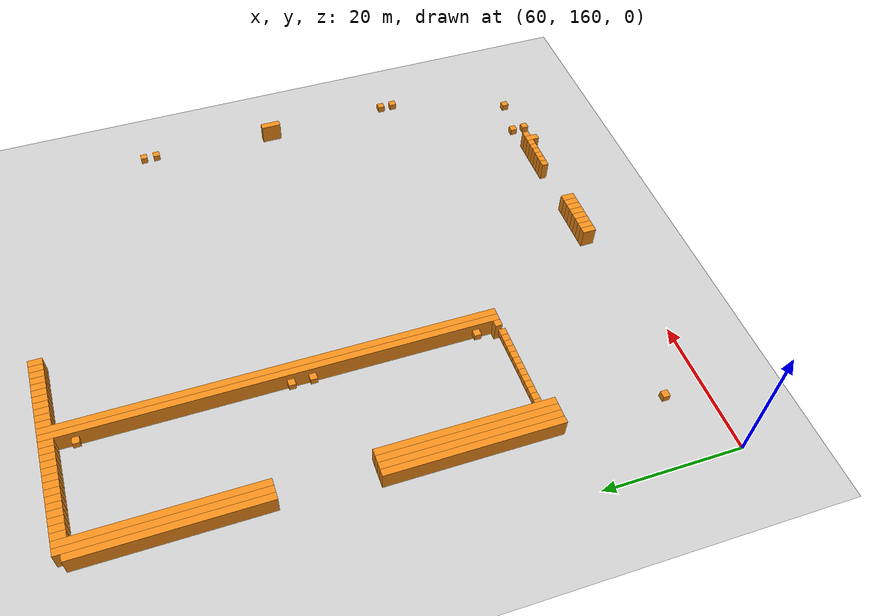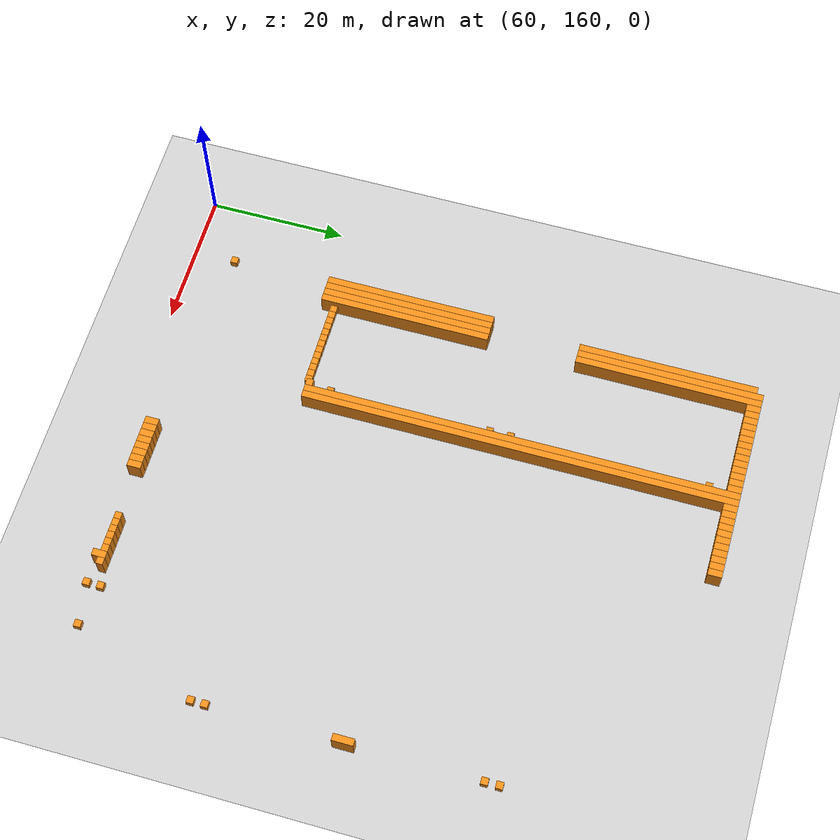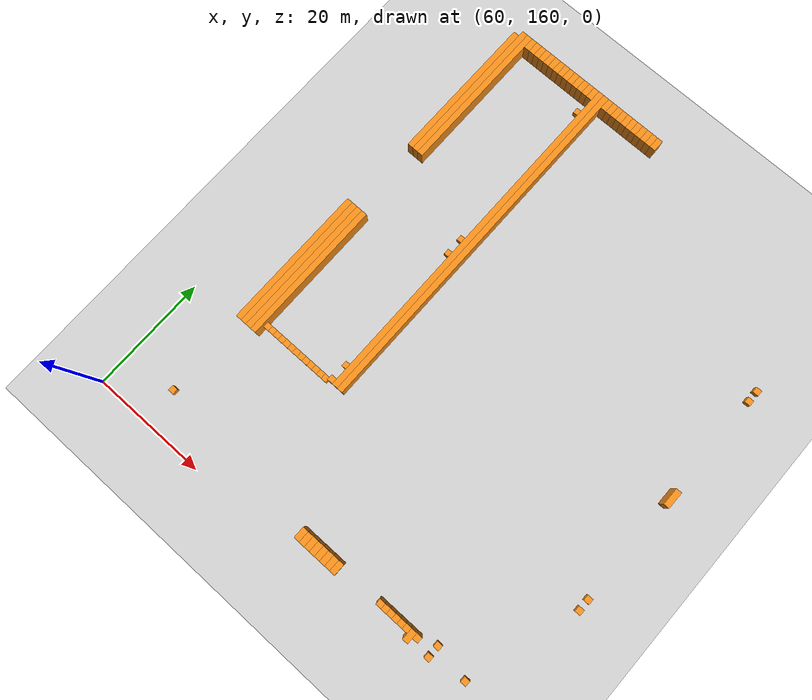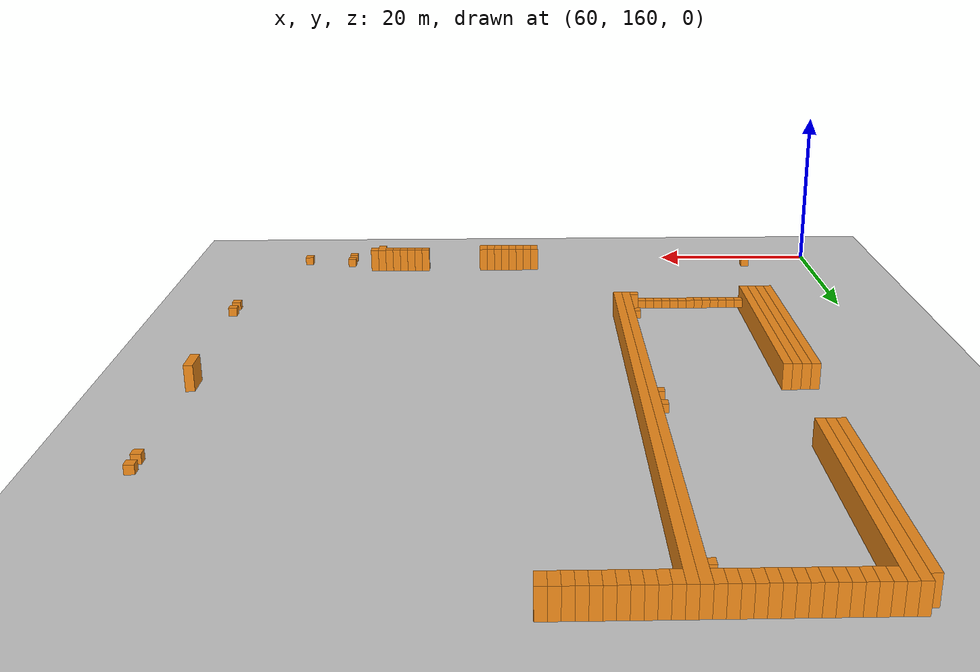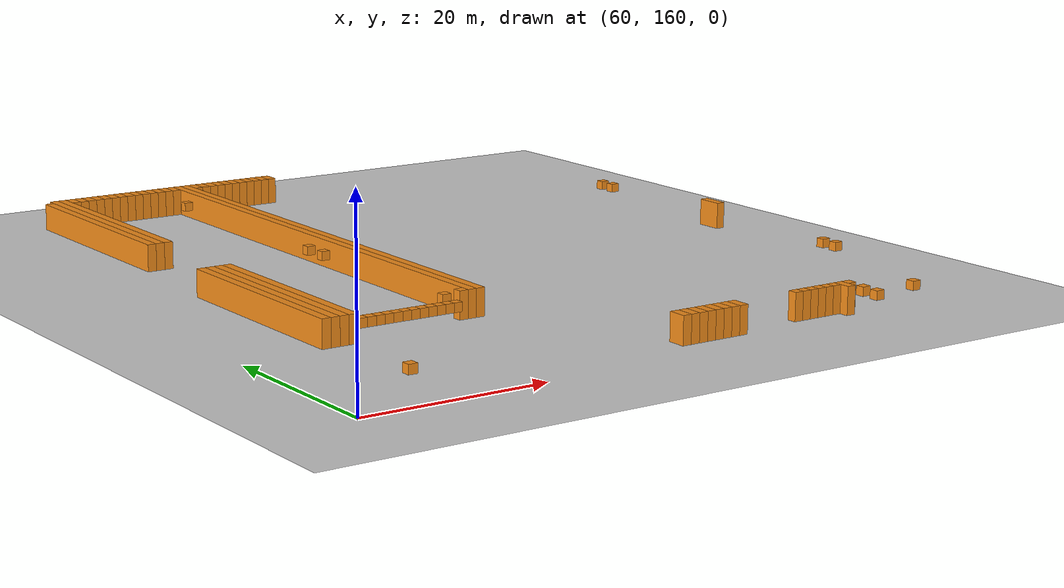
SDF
<sdf version="1.6">
 <world name="default">
  <include><uri>model://ground_plane</uri></include>
  <model name="unit_box_748">
   <pose>69.50   166.50     1.50 0 0 0</pose>
   <static>1</static>
   <link name="link">
    <inertial>
     <mass>5000</mass>
     <inertia><ixx>200</ixx><ixy>0</ixy><ixz>0</ixz><iyy>200</iyy><iyz>0</iyz><izz>200</izz></inertia>
    </inertial>
    <collision name="collision"><geometry><box><size>1 1 1</size></box></geometry></collision>
    <visual name="visual">
     <geometry><box><size>1 1 1</size></box></geometry>
     <material>
      <script><name>Gazebo/Orange</name><uri>file://media/materials/scripts/gazebo.material</uri></script>
     </material>
    </visual>
   </link>
  </model>
  <model name="unit_box_749">
   <pose>69.50   193.50     1.50 0 0 0</pose>
   <static>1</static>
   <link name="link">
    <inertial>
     <mass>5000</mass>
     <inertia><ixx>200</ixx><ixy>0</ixy><ixz>0</ixz><iyy>200</iyy><iyz>0</iyz><izz>200</izz></inertia>
    </inertial>
    <collision name="collision"><geometry><box><size>1 25 3</size></box></geometry></collision>
    <visual name="visual">
     <geometry><box><size>1 25 3</size></box></geometry>
     <material>
      <script><name>Gazebo/Orange</name><uri>file://media/materials/scripts/gazebo.material</uri></script>
     </material>
    </visual>
   </link>
  </model>
  <model name="unit_box_760">
   <pose>70.50   193.50     1.50 0 0 0</pose>
   <static>1</static>
   <link name="link">
    <inertial>
     <mass>5000</mass>
     <inertia><ixx>200</ixx><ixy>0</ixy><ixz>0</ixz><iyy>200</iyy><iyz>0</iyz><izz>200</izz></inertia>
    </inertial>
    <collision name="collision"><geometry><box><size>1 25 3</size></box></geometry></collision>
    <visual name="visual">
     <geometry><box><size>1 25 3</size></box></geometry>
     <material>
      <script><name>Gazebo/Orange</name><uri>file://media/materials/scripts/gazebo.material</uri></script>
     </material>
    </visual>
   </link>
  </model>
  <model name="unit_box_761">
   <pose>70.50   232.00     1.50 0 0 0</pose>
   <static>1</static>
   <link name="link">
    <inertial>
     <mass>5000</mass>
     <inertia><ixx>200</ixx><ixy>0</ixy><ixz>0</ixz><iyy>200</iyy><iyz>0</iyz><izz>200</izz></inertia>
    </inertial>
    <collision name="collision"><geometry><box><size>1 26 3</size></box></geometry></collision>
    <visual name="visual">
     <geometry><box><size>1 26 3</size></box></geometry>
     <material>
      <script><name>Gazebo/Orange</name><uri>file://media/materials/scripts/gazebo.material</uri></script>
     </material>
    </visual>
   </link>
  </model>
  <model name="unit_box_773">
   <pose>71.50   193.50     1.50 0 0 0</pose>
   <static>1</static>
   <link name="link">
    <inertial>
     <mass>5000</mass>
     <inertia><ixx>200</ixx><ixy>0</ixy><ixz>0</ixz><iyy>200</iyy><iyz>0</iyz><izz>200</izz></inertia>
    </inertial>
    <collision name="collision"><geometry><box><size>1 25 3</size></box></geometry></collision>
    <visual name="visual">
     <geometry><box><size>1 25 3</size></box></geometry>
     <material>
      <script><name>Gazebo/Orange</name><uri>file://media/materials/scripts/gazebo.material</uri></script>
     </material>
    </visual>
   </link>
  </model>
  <model name="unit_box_774">
   <pose>71.50   232.50     1.50 0 0 0</pose>
   <static>1</static>
   <link name="link">
    <inertial>
     <mass>5000</mass>
     <inertia><ixx>200</ixx><ixy>0</ixy><ixz>0</ixz><iyy>200</iyy><iyz>0</iyz><izz>200</izz></inertia>
    </inertial>
    <collision name="collision"><geometry><box><size>1 27 3</size></box></geometry></collision>
    <visual name="visual">
     <geometry><box><size>1 27 3</size></box></geometry>
     <material>
      <script><name>Gazebo/Orange</name><uri>file://media/materials/scripts/gazebo.material</uri></script>
     </material>
    </visual>
   </link>
  </model>
  <model name="unit_box_787">
   <pose>72.50   193.50     1.50 0 0 0</pose>
   <static>1</static>
   <link name="link">
    <inertial>
     <mass>5000</mass>
     <inertia><ixx>200</ixx><ixy>0</ixy><ixz>0</ixz><iyy>200</iyy><iyz>0</iyz><izz>200</izz></inertia>
    </inertial>
    <collision name="collision"><geometry><box><size>1 25 3</size></box></geometry></collision>
    <visual name="visual">
     <geometry><box><size>1 25 3</size></box></geometry>
     <material>
      <script><name>Gazebo/Orange</name><uri>file://media/materials/scripts/gazebo.material</uri></script>
     </material>
    </visual>
   </link>
  </model>
  <model name="unit_box_788">
   <pose>72.50   232.50     1.50 0 0 0</pose>
   <static>1</static>
   <link name="link">
    <inertial>
     <mass>5000</mass>
     <inertia><ixx>200</ixx><ixy>0</ixy><ixz>0</ixz><iyy>200</iyy><iyz>0</iyz><izz>200</izz></inertia>
    </inertial>
    <collision name="collision"><geometry><box><size>1 27 3</size></box></geometry></collision>
    <visual name="visual">
     <geometry><box><size>1 27 3</size></box></geometry>
     <material>
      <script><name>Gazebo/Orange</name><uri>file://media/materials/scripts/gazebo.material</uri></script>
     </material>
    </visual>
   </link>
  </model>
  <model name="unit_box_802">
   <pose>73.50   183.00     1.50 0 0 0</pose>
   <static>1</static>
   <link name="link">
    <inertial>
     <mass>5000</mass>
     <inertia><ixx>200</ixx><ixy>0</ixy><ixz>0</ixz><iyy>200</iyy><iyz>0</iyz><izz>200</izz></inertia>
    </inertial>
    <collision name="collision"><geometry><box><size>1 1 1</size></box></geometry></collision>
    <visual name="visual">
     <geometry><box><size>1 1 1</size></box></geometry>
     <material>
      <script><name>Gazebo/Orange</name><uri>file://media/materials/scripts/gazebo.material</uri></script>
     </material>
    </visual>
   </link>
  </model>
  <model name="unit_box_803">
   <pose>73.50   245.00     1.50 0 0 0</pose>
   <static>1</static>
   <link name="link">
    <inertial>
     <mass>5000</mass>
     <inertia><ixx>200</ixx><ixy>0</ixy><ixz>0</ixz><iyy>200</iyy><iyz>0</iyz><izz>200</izz></inertia>
    </inertial>
    <collision name="collision"><geometry><box><size>1 2 3</size></box></geometry></collision>
    <visual name="visual">
     <geometry><box><size>1 2 3</size></box></geometry>
     <material>
      <script><name>Gazebo/Orange</name><uri>file://media/materials/scripts/gazebo.material</uri></script>
     </material>
    </visual>
   </link>
  </model>
  <model name="unit_box_818">
   <pose>74.50   183.00     1.50 0 0 0</pose>
   <static>1</static>
   <link name="link">
    <inertial>
     <mass>5000</mass>
     <inertia><ixx>200</ixx><ixy>0</ixy><ixz>0</ixz><iyy>200</iyy><iyz>0</iyz><izz>200</izz></inertia>
    </inertial>
    <collision name="collision"><geometry><box><size>1 1 1</size></box></geometry></collision>
    <visual name="visual">
     <geometry><box><size>1 1 1</size></box></geometry>
     <material>
      <script><name>Gazebo/Orange</name><uri>file://media/materials/scripts/gazebo.material</uri></script>
     </material>
    </visual>
   </link>
  </model>
  <model name="unit_box_819">
   <pose>74.50   245.00     1.50 0 0 0</pose>
   <static>1</static>
   <link name="link">
    <inertial>
     <mass>5000</mass>
     <inertia><ixx>200</ixx><ixy>0</ixy><ixz>0</ixz><iyy>200</iyy><iyz>0</iyz><izz>200</izz></inertia>
    </inertial>
    <collision name="collision"><geometry><box><size>1 2 3</size></box></geometry></collision>
    <visual name="visual">
     <geometry><box><size>1 2 3</size></box></geometry>
     <material>
      <script><name>Gazebo/Orange</name><uri>file://media/materials/scripts/gazebo.material</uri></script>
     </material>
    </visual>
   </link>
  </model>
  <model name="unit_box_833">
   <pose>75.50   183.00     1.50 0 0 0</pose>
   <static>1</static>
   <link name="link">
    <inertial>
     <mass>5000</mass>
     <inertia><ixx>200</ixx><ixy>0</ixy><ixz>0</ixz><iyy>200</iyy><iyz>0</iyz><izz>200</izz></inertia>
    </inertial>
    <collision name="collision"><geometry><box><size>1 1 1</size></box></geometry></collision>
    <visual name="visual">
     <geometry><box><size>1 1 1</size></box></geometry>
     <material>
      <script><name>Gazebo/Orange</name><uri>file://media/materials/scripts/gazebo.material</uri></script>
     </material>
    </visual>
   </link>
  </model>
  <model name="unit_box_834">
   <pose>75.50   245.00     1.50 0 0 0</pose>
   <static>1</static>
   <link name="link">
    <inertial>
     <mass>5000</mass>
     <inertia><ixx>200</ixx><ixy>0</ixy><ixz>0</ixz><iyy>200</iyy><iyz>0</iyz><izz>200</izz></inertia>
    </inertial>
    <collision name="collision"><geometry><box><size>1 2 3</size></box></geometry></collision>
    <visual name="visual">
     <geometry><box><size>1 2 3</size></box></geometry>
     <material>
      <script><name>Gazebo/Orange</name><uri>file://media/materials/scripts/gazebo.material</uri></script>
     </material>
    </visual>
   </link>
  </model>
  <model name="unit_box_848">
   <pose>76.50   183.00     1.50 0 0 0</pose>
   <static>1</static>
   <link name="link">
    <inertial>
     <mass>5000</mass>
     <inertia><ixx>200</ixx><ixy>0</ixy><ixz>0</ixz><iyy>200</iyy><iyz>0</iyz><izz>200</izz></inertia>
    </inertial>
    <collision name="collision"><geometry><box><size>1 1 1</size></box></geometry></collision>
    <visual name="visual">
     <geometry><box><size>1 1 1</size></box></geometry>
     <material>
      <script><name>Gazebo/Orange</name><uri>file://media/materials/scripts/gazebo.material</uri></script>
     </material>
    </visual>
   </link>
  </model>
  <model name="unit_box_849">
   <pose>76.50   245.00     1.50 0 0 0</pose>
   <static>1</static>
   <link name="link">
    <inertial>
     <mass>5000</mass>
     <inertia><ixx>200</ixx><ixy>0</ixy><ixz>0</ixz><iyy>200</iyy><iyz>0</iyz><izz>200</izz></inertia>
    </inertial>
    <collision name="collision"><geometry><box><size>1 2 3</size></box></geometry></collision>
    <visual name="visual">
     <geometry><box><size>1 2 3</size></box></geometry>
     <material>
      <script><name>Gazebo/Orange</name><uri>file://media/materials/scripts/gazebo.material</uri></script>
     </material>
    </visual>
   </link>
  </model>
  <model name="unit_box_863">
   <pose>77.50   183.00     1.50 0 0 0</pose>
   <static>1</static>
   <link name="link">
    <inertial>
     <mass>5000</mass>
     <inertia><ixx>200</ixx><ixy>0</ixy><ixz>0</ixz><iyy>200</iyy><iyz>0</iyz><izz>200</izz></inertia>
    </inertial>
    <collision name="collision"><geometry><box><size>1 1 1</size></box></geometry></collision>
    <visual name="visual">
     <geometry><box><size>1 1 1</size></box></geometry>
     <material>
      <script><name>Gazebo/Orange</name><uri>file://media/materials/scripts/gazebo.material</uri></script>
     </material>
    </visual>
   </link>
  </model>
  <model name="unit_box_864">
   <pose>77.50   245.00     1.50 0 0 0</pose>
   <static>1</static>
   <link name="link">
    <inertial>
     <mass>5000</mass>
     <inertia><ixx>200</ixx><ixy>0</ixy><ixz>0</ixz><iyy>200</iyy><iyz>0</iyz><izz>200</izz></inertia>
    </inertial>
    <collision name="collision"><geometry><box><size>1 2 3</size></box></geometry></collision>
    <visual name="visual">
     <geometry><box><size>1 2 3</size></box></geometry>
     <material>
      <script><name>Gazebo/Orange</name><uri>file://media/materials/scripts/gazebo.material</uri></script>
     </material>
    </visual>
   </link>
  </model>
  <model name="unit_box_876">
   <pose>78.50   183.00     1.50 0 0 0</pose>
   <static>1</static>
   <link name="link">
    <inertial>
     <mass>5000</mass>
     <inertia><ixx>200</ixx><ixy>0</ixy><ixz>0</ixz><iyy>200</iyy><iyz>0</iyz><izz>200</izz></inertia>
    </inertial>
    <collision name="collision"><geometry><box><size>1 1 1</size></box></geometry></collision>
    <visual name="visual">
     <geometry><box><size>1 1 1</size></box></geometry>
     <material>
      <script><name>Gazebo/Orange</name><uri>file://media/materials/scripts/gazebo.material</uri></script>
     </material>
    </visual>
   </link>
  </model>
  <model name="unit_box_877">
   <pose>78.50   245.00     1.50 0 0 0</pose>
   <static>1</static>
   <link name="link">
    <inertial>
     <mass>5000</mass>
     <inertia><ixx>200</ixx><ixy>0</ixy><ixz>0</ixz><iyy>200</iyy><iyz>0</iyz><izz>200</izz></inertia>
    </inertial>
    <collision name="collision"><geometry><box><size>1 2 3</size></box></geometry></collision>
    <visual name="visual">
     <geometry><box><size>1 2 3</size></box></geometry>
     <material>
      <script><name>Gazebo/Orange</name><uri>file://media/materials/scripts/gazebo.material</uri></script>
     </material>
    </visual>
   </link>
  </model>
  <model name="unit_box_889">
   <pose>79.50   183.00     1.50 0 0 0</pose>
   <static>1</static>
   <link name="link">
    <inertial>
     <mass>5000</mass>
     <inertia><ixx>200</ixx><ixy>0</ixy><ixz>0</ixz><iyy>200</iyy><iyz>0</iyz><izz>200</izz></inertia>
    </inertial>
    <collision name="collision"><geometry><box><size>1 1 1</size></box></geometry></collision>
    <visual name="visual">
     <geometry><box><size>1 1 1</size></box></geometry>
     <material>
      <script><name>Gazebo/Orange</name><uri>file://media/materials/scripts/gazebo.material</uri></script>
     </material>
    </visual>
   </link>
  </model>
  <model name="unit_box_890">
   <pose>79.50   245.00     1.50 0 0 0</pose>
   <static>1</static>
   <link name="link">
    <inertial>
     <mass>5000</mass>
     <inertia><ixx>200</ixx><ixy>0</ixy><ixz>0</ixz><iyy>200</iyy><iyz>0</iyz><izz>200</izz></inertia>
    </inertial>
    <collision name="collision"><geometry><box><size>1 2 3</size></box></geometry></collision>
    <visual name="visual">
     <geometry><box><size>1 2 3</size></box></geometry>
     <material>
      <script><name>Gazebo/Orange</name><uri>file://media/materials/scripts/gazebo.material</uri></script>
     </material>
    </visual>
   </link>
  </model>
  <model name="unit_box_902">
   <pose>80.50   183.00     1.50 0 0 0</pose>
   <static>1</static>
   <link name="link">
    <inertial>
     <mass>5000</mass>
     <inertia><ixx>200</ixx><ixy>0</ixy><ixz>0</ixz><iyy>200</iyy><iyz>0</iyz><izz>200</izz></inertia>
    </inertial>
    <collision name="collision"><geometry><box><size>1 1 1</size></box></geometry></collision>
    <visual name="visual">
     <geometry><box><size>1 1 1</size></box></geometry>
     <material>
      <script><name>Gazebo/Orange</name><uri>file://media/materials/scripts/gazebo.material</uri></script>
     </material>
    </visual>
   </link>
  </model>
  <model name="unit_box_903">
   <pose>80.50   245.00     1.50 0 0 0</pose>
   <static>1</static>
   <link name="link">
    <inertial>
     <mass>5000</mass>
     <inertia><ixx>200</ixx><ixy>0</ixy><ixz>0</ixz><iyy>200</iyy><iyz>0</iyz><izz>200</izz></inertia>
    </inertial>
    <collision name="collision"><geometry><box><size>1 2 3</size></box></geometry></collision>
    <visual name="visual">
     <geometry><box><size>1 2 3</size></box></geometry>
     <material>
      <script><name>Gazebo/Orange</name><uri>file://media/materials/scripts/gazebo.material</uri></script>
     </material>
    </visual>
   </link>
  </model>
  <model name="unit_box_915">
   <pose>81.50   183.00     1.50 0 0 0</pose>
   <static>1</static>
   <link name="link">
    <inertial>
     <mass>5000</mass>
     <inertia><ixx>200</ixx><ixy>0</ixy><ixz>0</ixz><iyy>200</iyy><iyz>0</iyz><izz>200</izz></inertia>
    </inertial>
    <collision name="collision"><geometry><box><size>1 1 1</size></box></geometry></collision>
    <visual name="visual">
     <geometry><box><size>1 1 1</size></box></geometry>
     <material>
      <script><name>Gazebo/Orange</name><uri>file://media/materials/scripts/gazebo.material</uri></script>
     </material>
    </visual>
   </link>
  </model>
  <model name="unit_box_916">
   <pose>81.50   245.00     1.50 0 0 0</pose>
   <static>1</static>
   <link name="link">
    <inertial>
     <mass>5000</mass>
     <inertia><ixx>200</ixx><ixy>0</ixy><ixz>0</ixz><iyy>200</iyy><iyz>0</iyz><izz>200</izz></inertia>
    </inertial>
    <collision name="collision"><geometry><box><size>1 2 3</size></box></geometry></collision>
    <visual name="visual">
     <geometry><box><size>1 2 3</size></box></geometry>
     <material>
      <script><name>Gazebo/Orange</name><uri>file://media/materials/scripts/gazebo.material</uri></script>
     </material>
    </visual>
   </link>
  </model>
  <model name="unit_box_928">
   <pose>82.50   183.00     1.50 0 0 0</pose>
   <static>1</static>
   <link name="link">
    <inertial>
     <mass>5000</mass>
     <inertia><ixx>200</ixx><ixy>0</ixy><ixz>0</ixz><iyy>200</iyy><iyz>0</iyz><izz>200</izz></inertia>
    </inertial>
    <collision name="collision"><geometry><box><size>1 1 1</size></box></geometry></collision>
    <visual name="visual">
     <geometry><box><size>1 1 1</size></box></geometry>
     <material>
      <script><name>Gazebo/Orange</name><uri>file://media/materials/scripts/gazebo.material</uri></script>
     </material>
    </visual>
   </link>
  </model>
  <model name="unit_box_929">
   <pose>82.50   245.00     1.50 0 0 0</pose>
   <static>1</static>
   <link name="link">
    <inertial>
     <mass>5000</mass>
     <inertia><ixx>200</ixx><ixy>0</ixy><ixz>0</ixz><iyy>200</iyy><iyz>0</iyz><izz>200</izz></inertia>
    </inertial>
    <collision name="collision"><geometry><box><size>1 2 3</size></box></geometry></collision>
    <visual name="visual">
     <geometry><box><size>1 2 3</size></box></geometry>
     <material>
      <script><name>Gazebo/Orange</name><uri>file://media/materials/scripts/gazebo.material</uri></script>
     </material>
    </visual>
   </link>
  </model>
  <model name="unit_box_942">
   <pose>83.50   183.00     1.50 0 0 0</pose>
   <static>1</static>
   <link name="link">
    <inertial>
     <mass>5000</mass>
     <inertia><ixx>200</ixx><ixy>0</ixy><ixz>0</ixz><iyy>200</iyy><iyz>0</iyz><izz>200</izz></inertia>
    </inertial>
    <collision name="collision"><geometry><box><size>1 1 1</size></box></geometry></collision>
    <visual name="visual">
     <geometry><box><size>1 1 1</size></box></geometry>
     <material>
      <script><name>Gazebo/Orange</name><uri>file://media/materials/scripts/gazebo.material</uri></script>
     </material>
    </visual>
   </link>
  </model>
  <model name="unit_box_943">
   <pose>83.50   245.00     1.50 0 0 0</pose>
   <static>1</static>
   <link name="link">
    <inertial>
     <mass>5000</mass>
     <inertia><ixx>200</ixx><ixy>0</ixy><ixz>0</ixz><iyy>200</iyy><iyz>0</iyz><izz>200</izz></inertia>
    </inertial>
    <collision name="collision"><geometry><box><size>1 2 3</size></box></geometry></collision>
    <visual name="visual">
     <geometry><box><size>1 2 3</size></box></geometry>
     <material>
      <script><name>Gazebo/Orange</name><uri>file://media/materials/scripts/gazebo.material</uri></script>
     </material>
    </visual>
   </link>
  </model>
  <model name="unit_box_956">
   <pose>84.50   183.00     1.50 0 0 0</pose>
   <static>1</static>
   <link name="link">
    <inertial>
     <mass>5000</mass>
     <inertia><ixx>200</ixx><ixy>0</ixy><ixz>0</ixz><iyy>200</iyy><iyz>0</iyz><izz>200</izz></inertia>
    </inertial>
    <collision name="collision"><geometry><box><size>1 1 1</size></box></geometry></collision>
    <visual name="visual">
     <geometry><box><size>1 1 1</size></box></geometry>
     <material>
      <script><name>Gazebo/Orange</name><uri>file://media/materials/scripts/gazebo.material</uri></script>
     </material>
    </visual>
   </link>
  </model>
  <model name="unit_box_957">
   <pose>84.50   245.00     1.50 0 0 0</pose>
   <static>1</static>
   <link name="link">
    <inertial>
     <mass>5000</mass>
     <inertia><ixx>200</ixx><ixy>0</ixy><ixz>0</ixz><iyy>200</iyy><iyz>0</iyz><izz>200</izz></inertia>
    </inertial>
    <collision name="collision"><geometry><box><size>1 2 3</size></box></geometry></collision>
    <visual name="visual">
     <geometry><box><size>1 2 3</size></box></geometry>
     <material>
      <script><name>Gazebo/Orange</name><uri>file://media/materials/scripts/gazebo.material</uri></script>
     </material>
    </visual>
   </link>
  </model>
  <model name="unit_box_968">
   <pose>85.50   183.00     1.50 0 0 0</pose>
   <static>1</static>
   <link name="link">
    <inertial>
     <mass>5000</mass>
     <inertia><ixx>200</ixx><ixy>0</ixy><ixz>0</ixz><iyy>200</iyy><iyz>0</iyz><izz>200</izz></inertia>
    </inertial>
    <collision name="collision"><geometry><box><size>1 1 1</size></box></geometry></collision>
    <visual name="visual">
     <geometry><box><size>1 1 1</size></box></geometry>
     <material>
      <script><name>Gazebo/Orange</name><uri>file://media/materials/scripts/gazebo.material</uri></script>
     </material>
    </visual>
   </link>
  </model>
  <model name="unit_box_969">
   <pose>85.50   245.00     1.50 0 0 0</pose>
   <static>1</static>
   <link name="link">
    <inertial>
     <mass>5000</mass>
     <inertia><ixx>200</ixx><ixy>0</ixy><ixz>0</ixz><iyy>200</iyy><iyz>0</iyz><izz>200</izz></inertia>
    </inertial>
    <collision name="collision"><geometry><box><size>1 2 3</size></box></geometry></collision>
    <visual name="visual">
     <geometry><box><size>1 2 3</size></box></geometry>
     <material>
      <script><name>Gazebo/Orange</name><uri>file://media/materials/scripts/gazebo.material</uri></script>
     </material>
    </visual>
   </link>
  </model>
  <model name="unit_box_979">
   <pose>86.50   183.50     1.50 0 0 0</pose>
   <static>1</static>
   <link name="link">
    <inertial>
     <mass>5000</mass>
     <inertia><ixx>200</ixx><ixy>0</ixy><ixz>0</ixz><iyy>200</iyy><iyz>0</iyz><izz>200</izz></inertia>
    </inertial>
    <collision name="collision"><geometry><box><size>1 1 3</size></box></geometry></collision>
    <visual name="visual">
     <geometry><box><size>1 1 3</size></box></geometry>
     <material>
      <script><name>Gazebo/Orange</name><uri>file://media/materials/scripts/gazebo.material</uri></script>
     </material>
    </visual>
   </link>
  </model>
  <model name="unit_box_980">
   <pose>86.50   186.50     1.50 0 0 0</pose>
   <static>1</static>
   <link name="link">
    <inertial>
     <mass>5000</mass>
     <inertia><ixx>200</ixx><ixy>0</ixy><ixz>0</ixz><iyy>200</iyy><iyz>0</iyz><izz>200</izz></inertia>
    </inertial>
    <collision name="collision"><geometry><box><size>1 1 1</size></box></geometry></collision>
    <visual name="visual">
     <geometry><box><size>1 1 1</size></box></geometry>
     <material>
      <script><name>Gazebo/Orange</name><uri>file://media/materials/scripts/gazebo.material</uri></script>
     </material>
    </visual>
   </link>
  </model>
  <model name="unit_box_981">
   <pose>86.50   210.00     1.50 0 0 0</pose>
   <static>1</static>
   <link name="link">
    <inertial>
     <mass>5000</mass>
     <inertia><ixx>200</ixx><ixy>0</ixy><ixz>0</ixz><iyy>200</iyy><iyz>0</iyz><izz>200</izz></inertia>
    </inertial>
    <collision name="collision"><geometry><box><size>1 1 1</size></box></geometry></collision>
    <visual name="visual">
     <geometry><box><size>1 1 1</size></box></geometry>
     <material>
      <script><name>Gazebo/Orange</name><uri>file://media/materials/scripts/gazebo.material</uri></script>
     </material>
    </visual>
   </link>
  </model>
  <model name="unit_box_982">
   <pose>86.50   213.00     1.50 0 0 0</pose>
   <static>1</static>
   <link name="link">
    <inertial>
     <mass>5000</mass>
     <inertia><ixx>200</ixx><ixy>0</ixy><ixz>0</ixz><iyy>200</iyy><iyz>0</iyz><izz>200</izz></inertia>
    </inertial>
    <collision name="collision"><geometry><box><size>1 1 1</size></box></geometry></collision>
    <visual name="visual">
     <geometry><box><size>1 1 1</size></box></geometry>
     <material>
      <script><name>Gazebo/Orange</name><uri>file://media/materials/scripts/gazebo.material</uri></script>
     </material>
    </visual>
   </link>
  </model>
  <model name="unit_box_983">
   <pose>86.50   241.50     1.50 0 0 0</pose>
   <static>1</static>
   <link name="link">
    <inertial>
     <mass>5000</mass>
     <inertia><ixx>200</ixx><ixy>0</ixy><ixz>0</ixz><iyy>200</iyy><iyz>0</iyz><izz>200</izz></inertia>
    </inertial>
    <collision name="collision"><geometry><box><size>1 1 1</size></box></geometry></collision>
    <visual name="visual">
     <geometry><box><size>1 1 1</size></box></geometry>
     <material>
      <script><name>Gazebo/Orange</name><uri>file://media/materials/scripts/gazebo.material</uri></script>
     </material>
    </visual>
   </link>
  </model>
  <model name="unit_box_984">
   <pose>86.50   245.00     1.50 0 0 0</pose>
   <static>1</static>
   <link name="link">
    <inertial>
     <mass>5000</mass>
     <inertia><ixx>200</ixx><ixy>0</ixy><ixz>0</ixz><iyy>200</iyy><iyz>0</iyz><izz>200</izz></inertia>
    </inertial>
    <collision name="collision"><geometry><box><size>1 2 3</size></box></geometry></collision>
    <visual name="visual">
     <geometry><box><size>1 2 3</size></box></geometry>
     <material>
      <script><name>Gazebo/Orange</name><uri>file://media/materials/scripts/gazebo.material</uri></script>
     </material>
    </visual>
   </link>
  </model>
  <model name="unit_box_994">
   <pose>87.50   214.50     1.50 0 0 0</pose>
   <static>1</static>
   <link name="link">
    <inertial>
     <mass>5000</mass>
     <inertia><ixx>200</ixx><ixy>0</ixy><ixz>0</ixz><iyy>200</iyy><iyz>0</iyz><izz>200</izz></inertia>
    </inertial>
    <collision name="collision"><geometry><box><size>1 63 3</size></box></geometry></collision>
    <visual name="visual">
     <geometry><box><size>1 63 3</size></box></geometry>
     <material>
      <script><name>Gazebo/Orange</name><uri>file://media/materials/scripts/gazebo.material</uri></script>
     </material>
    </visual>
   </link>
  </model>
  <model name="unit_box_1004">
   <pose>88.50   214.50     1.50 0 0 0</pose>
   <static>1</static>
   <link name="link">
    <inertial>
     <mass>5000</mass>
     <inertia><ixx>200</ixx><ixy>0</ixy><ixz>0</ixz><iyy>200</iyy><iyz>0</iyz><izz>200</izz></inertia>
    </inertial>
    <collision name="collision"><geometry><box><size>1 63 3</size></box></geometry></collision>
    <visual name="visual">
     <geometry><box><size>1 63 3</size></box></geometry>
     <material>
      <script><name>Gazebo/Orange</name><uri>file://media/materials/scripts/gazebo.material</uri></script>
     </material>
    </visual>
   </link>
  </model>
  <model name="unit_box_1015">
   <pose>89.50   245.00     1.50 0 0 0</pose>
   <static>1</static>
   <link name="link">
    <inertial>
     <mass>5000</mass>
     <inertia><ixx>200</ixx><ixy>0</ixy><ixz>0</ixz><iyy>200</iyy><iyz>0</iyz><izz>200</izz></inertia>
    </inertial>
    <collision name="collision"><geometry><box><size>1 2 3</size></box></geometry></collision>
    <visual name="visual">
     <geometry><box><size>1 2 3</size></box></geometry>
     <material>
      <script><name>Gazebo/Orange</name><uri>file://media/materials/scripts/gazebo.material</uri></script>
     </material>
    </visual>
   </link>
  </model>
  <model name="unit_box_1024">
   <pose>90.50   245.00     1.50 0 0 0</pose>
   <static>1</static>
   <link name="link">
    <inertial>
     <mass>5000</mass>
     <inertia><ixx>200</ixx><ixy>0</ixy><ixz>0</ixz><iyy>200</iyy><iyz>0</iyz><izz>200</izz></inertia>
    </inertial>
    <collision name="collision"><geometry><box><size>1 2 3</size></box></geometry></collision>
    <visual name="visual">
     <geometry><box><size>1 2 3</size></box></geometry>
     <material>
      <script><name>Gazebo/Orange</name><uri>file://media/materials/scripts/gazebo.material</uri></script>
     </material>
    </visual>
   </link>
  </model>
  <model name="unit_box_1033">
   <pose>91.50   245.00     1.50 0 0 0</pose>
   <static>1</static>
   <link name="link">
    <inertial>
     <mass>5000</mass>
     <inertia><ixx>200</ixx><ixy>0</ixy><ixz>0</ixz><iyy>200</iyy><iyz>0</iyz><izz>200</izz></inertia>
    </inertial>
    <collision name="collision"><geometry><box><size>1 2 3</size></box></geometry></collision>
    <visual name="visual">
     <geometry><box><size>1 2 3</size></box></geometry>
     <material>
      <script><name>Gazebo/Orange</name><uri>file://media/materials/scripts/gazebo.material</uri></script>
     </material>
    </visual>
   </link>
  </model>
  <model name="unit_box_1042">
   <pose>92.50   245.00     1.50 0 0 0</pose>
   <static>1</static>
   <link name="link">
    <inertial>
     <mass>5000</mass>
     <inertia><ixx>200</ixx><ixy>0</ixy><ixz>0</ixz><iyy>200</iyy><iyz>0</iyz><izz>200</izz></inertia>
    </inertial>
    <collision name="collision"><geometry><box><size>1 2 3</size></box></geometry></collision>
    <visual name="visual">
     <geometry><box><size>1 2 3</size></box></geometry>
     <material>
      <script><name>Gazebo/Orange</name><uri>file://media/materials/scripts/gazebo.material</uri></script>
     </material>
    </visual>
   </link>
  </model>
  <model name="unit_box_1051">
   <pose>93.50   245.00     1.50 0 0 0</pose>
   <static>1</static>
   <link name="link">
    <inertial>
     <mass>5000</mass>
     <inertia><ixx>200</ixx><ixy>0</ixy><ixz>0</ixz><iyy>200</iyy><iyz>0</iyz><izz>200</izz></inertia>
    </inertial>
    <collision name="collision"><geometry><box><size>1 2 3</size></box></geometry></collision>
    <visual name="visual">
     <geometry><box><size>1 2 3</size></box></geometry>
     <material>
      <script><name>Gazebo/Orange</name><uri>file://media/materials/scripts/gazebo.material</uri></script>
     </material>
    </visual>
   </link>
  </model>
  <model name="unit_box_1059">
   <pose>94.50   245.00     1.50 0 0 0</pose>
   <static>1</static>
   <link name="link">
    <inertial>
     <mass>5000</mass>
     <inertia><ixx>200</ixx><ixy>0</ixy><ixz>0</ixz><iyy>200</iyy><iyz>0</iyz><izz>200</izz></inertia>
    </inertial>
    <collision name="collision"><geometry><box><size>1 2 3</size></box></geometry></collision>
    <visual name="visual">
     <geometry><box><size>1 2 3</size></box></geometry>
     <material>
      <script><name>Gazebo/Orange</name><uri>file://media/materials/scripts/gazebo.material</uri></script>
     </material>
    </visual>
   </link>
  </model>
  <model name="unit_box_1070">
   <pose>95.50   245.00     1.50 0 0 0</pose>
   <static>1</static>
   <link name="link">
    <inertial>
     <mass>5000</mass>
     <inertia><ixx>200</ixx><ixy>0</ixy><ixz>0</ixz><iyy>200</iyy><iyz>0</iyz><izz>200</izz></inertia>
    </inertial>
    <collision name="collision"><geometry><box><size>1 2 3</size></box></geometry></collision>
    <visual name="visual">
     <geometry><box><size>1 2 3</size></box></geometry>
     <material>
      <script><name>Gazebo/Orange</name><uri>file://media/materials/scripts/gazebo.material</uri></script>
     </material>
    </visual>
   </link>
  </model>
  <model name="unit_box_1082">
   <pose>96.50   245.00     1.50 0 0 0</pose>
   <static>1</static>
   <link name="link">
    <inertial>
     <mass>5000</mass>
     <inertia><ixx>200</ixx><ixy>0</ixy><ixz>0</ixz><iyy>200</iyy><iyz>0</iyz><izz>200</izz></inertia>
    </inertial>
    <collision name="collision"><geometry><box><size>1 2 3</size></box></geometry></collision>
    <visual name="visual">
     <geometry><box><size>1 2 3</size></box></geometry>
     <material>
      <script><name>Gazebo/Orange</name><uri>file://media/materials/scripts/gazebo.material</uri></script>
     </material>
    </visual>
   </link>
  </model>
  <model name="unit_box_1091">
   <pose>97.50   245.00     1.50 0 0 0</pose>
   <static>1</static>
   <link name="link">
    <inertial>
     <mass>5000</mass>
     <inertia><ixx>200</ixx><ixy>0</ixy><ixz>0</ixz><iyy>200</iyy><iyz>0</iyz><izz>200</izz></inertia>
    </inertial>
    <collision name="collision"><geometry><box><size>1 2 3</size></box></geometry></collision>
    <visual name="visual">
     <geometry><box><size>1 2 3</size></box></geometry>
     <material>
      <script><name>Gazebo/Orange</name><uri>file://media/materials/scripts/gazebo.material</uri></script>
     </material>
    </visual>
   </link>
  </model>
  <model name="unit_box_1101">
   <pose>98.50   164.00     1.50 0 0 0</pose>
   <static>1</static>
   <link name="link">
    <inertial>
     <mass>5000</mass>
     <inertia><ixx>200</ixx><ixy>0</ixy><ixz>0</ixz><iyy>200</iyy><iyz>0</iyz><izz>200</izz></inertia>
    </inertial>
    <collision name="collision"><geometry><box><size>1 2 3</size></box></geometry></collision>
    <visual name="visual">
     <geometry><box><size>1 2 3</size></box></geometry>
     <material>
      <script><name>Gazebo/Orange</name><uri>file://media/materials/scripts/gazebo.material</uri></script>
     </material>
    </visual>
   </link>
  </model>
  <model name="unit_box_1102">
   <pose>98.50   245.00     1.50 0 0 0</pose>
   <static>1</static>
   <link name="link">
    <inertial>
     <mass>5000</mass>
     <inertia><ixx>200</ixx><ixy>0</ixy><ixz>0</ixz><iyy>200</iyy><iyz>0</iyz><izz>200</izz></inertia>
    </inertial>
    <collision name="collision"><geometry><box><size>1 2 3</size></box></geometry></collision>
    <visual name="visual">
     <geometry><box><size>1 2 3</size></box></geometry>
     <material>
      <script><name>Gazebo/Orange</name><uri>file://media/materials/scripts/gazebo.material</uri></script>
     </material>
    </visual>
   </link>
  </model>
  <model name="unit_box_1113">
   <pose>99.50   164.00     1.50 0 0 0</pose>
   <static>1</static>
   <link name="link">
    <inertial>
     <mass>5000</mass>
     <inertia><ixx>200</ixx><ixy>0</ixy><ixz>0</ixz><iyy>200</iyy><iyz>0</iyz><izz>200</izz></inertia>
    </inertial>
    <collision name="collision"><geometry><box><size>1 2 3</size></box></geometry></collision>
    <visual name="visual">
     <geometry><box><size>1 2 3</size></box></geometry>
     <material>
      <script><name>Gazebo/Orange</name><uri>file://media/materials/scripts/gazebo.material</uri></script>
     </material>
    </visual>
   </link>
  </model>
  <model name="unit_box_1114">
   <pose>99.50   245.00     1.50 0 0 0</pose>
   <static>1</static>
   <link name="link">
    <inertial>
     <mass>5000</mass>
     <inertia><ixx>200</ixx><ixy>0</ixy><ixz>0</ixz><iyy>200</iyy><iyz>0</iyz><izz>200</izz></inertia>
    </inertial>
    <collision name="collision"><geometry><box><size>1 2 3</size></box></geometry></collision>
    <visual name="visual">
     <geometry><box><size>1 2 3</size></box></geometry>
     <material>
      <script><name>Gazebo/Orange</name><uri>file://media/materials/scripts/gazebo.material</uri></script>
     </material>
    </visual>
   </link>
  </model>
  <model name="unit_box_1125">
   <pose>100.50   164.00     1.50 0 0 0</pose>
   <static>1</static>
   <link name="link">
    <inertial>
     <mass>5000</mass>
     <inertia><ixx>200</ixx><ixy>0</ixy><ixz>0</ixz><iyy>200</iyy><iyz>0</iyz><izz>200</izz></inertia>
    </inertial>
    <collision name="collision"><geometry><box><size>1 2 3</size></box></geometry></collision>
    <visual name="visual">
     <geometry><box><size>1 2 3</size></box></geometry>
     <material>
      <script><name>Gazebo/Orange</name><uri>file://media/materials/scripts/gazebo.material</uri></script>
     </material>
    </visual>
   </link>
  </model>
  <model name="unit_box_1137">
   <pose>101.50   164.00     1.50 0 0 0</pose>
   <static>1</static>
   <link name="link">
    <inertial>
     <mass>5000</mass>
     <inertia><ixx>200</ixx><ixy>0</ixy><ixz>0</ixz><iyy>200</iyy><iyz>0</iyz><izz>200</izz></inertia>
    </inertial>
    <collision name="collision"><geometry><box><size>1 2 3</size></box></geometry></collision>
    <visual name="visual">
     <geometry><box><size>1 2 3</size></box></geometry>
     <material>
      <script><name>Gazebo/Orange</name><uri>file://media/materials/scripts/gazebo.material</uri></script>
     </material>
    </visual>
   </link>
  </model>
  <model name="unit_box_1148">
   <pose>102.50   164.00     1.50 0 0 0</pose>
   <static>1</static>
   <link name="link">
    <inertial>
     <mass>5000</mass>
     <inertia><ixx>200</ixx><ixy>0</ixy><ixz>0</ixz><iyy>200</iyy><iyz>0</iyz><izz>200</izz></inertia>
    </inertial>
    <collision name="collision"><geometry><box><size>1 2 3</size></box></geometry></collision>
    <visual name="visual">
     <geometry><box><size>1 2 3</size></box></geometry>
     <material>
      <script><name>Gazebo/Orange</name><uri>file://media/materials/scripts/gazebo.material</uri></script>
     </material>
    </visual>
   </link>
  </model>
  <model name="unit_box_1158">
   <pose>103.50   164.00     1.50 0 0 0</pose>
   <static>1</static>
   <link name="link">
    <inertial>
     <mass>5000</mass>
     <inertia><ixx>200</ixx><ixy>0</ixy><ixz>0</ixz><iyy>200</iyy><iyz>0</iyz><izz>200</izz></inertia>
    </inertial>
    <collision name="collision"><geometry><box><size>1 2 3</size></box></geometry></collision>
    <visual name="visual">
     <geometry><box><size>1 2 3</size></box></geometry>
     <material>
      <script><name>Gazebo/Orange</name><uri>file://media/materials/scripts/gazebo.material</uri></script>
     </material>
    </visual>
   </link>
  </model>
  <model name="unit_box_1168">
   <pose>104.50   164.00     1.50 0 0 0</pose>
   <static>1</static>
   <link name="link">
    <inertial>
     <mass>5000</mass>
     <inertia><ixx>200</ixx><ixy>0</ixy><ixz>0</ixz><iyy>200</iyy><iyz>0</iyz><izz>200</izz></inertia>
    </inertial>
    <collision name="collision"><geometry><box><size>1 2 3</size></box></geometry></collision>
    <visual name="visual">
     <geometry><box><size>1 2 3</size></box></geometry>
     <material>
      <script><name>Gazebo/Orange</name><uri>file://media/materials/scripts/gazebo.material</uri></script>
     </material>
    </visual>
   </link>
  </model>
  <model name="unit_box_1178">
   <pose>105.50   164.00     1.50 0 0 0</pose>
   <static>1</static>
   <link name="link">
    <inertial>
     <mass>5000</mass>
     <inertia><ixx>200</ixx><ixy>0</ixy><ixz>0</ixz><iyy>200</iyy><iyz>0</iyz><izz>200</izz></inertia>
    </inertial>
    <collision name="collision"><geometry><box><size>1 2 3</size></box></geometry></collision>
    <visual name="visual">
     <geometry><box><size>1 2 3</size></box></geometry>
     <material>
      <script><name>Gazebo/Orange</name><uri>file://media/materials/scripts/gazebo.material</uri></script>
     </material>
    </visual>
   </link>
  </model>
  <model name="unit_box_1252">
   <pose>113.50   164.50     1.50 0 0 0</pose>
   <static>1</static>
   <link name="link">
    <inertial>
     <mass>5000</mass>
     <inertia><ixx>200</ixx><ixy>0</ixy><ixz>0</ixz><iyy>200</iyy><iyz>0</iyz><izz>200</izz></inertia>
    </inertial>
    <collision name="collision"><geometry><box><size>1 1 3</size></box></geometry></collision>
    <visual name="visual">
     <geometry><box><size>1 1 3</size></box></geometry>
     <material>
      <script><name>Gazebo/Orange</name><uri>file://media/materials/scripts/gazebo.material</uri></script>
     </material>
    </visual>
   </link>
  </model>
  <model name="unit_box_1262">
   <pose>114.50   164.50     1.50 0 0 0</pose>
   <static>1</static>
   <link name="link">
    <inertial>
     <mass>5000</mass>
     <inertia><ixx>200</ixx><ixy>0</ixy><ixz>0</ixz><iyy>200</iyy><iyz>0</iyz><izz>200</izz></inertia>
    </inertial>
    <collision name="collision"><geometry><box><size>1 1 3</size></box></geometry></collision>
    <visual name="visual">
     <geometry><box><size>1 1 3</size></box></geometry>
     <material>
      <script><name>Gazebo/Orange</name><uri>file://media/materials/scripts/gazebo.material</uri></script>
     </material>
    </visual>
   </link>
  </model>
  <model name="unit_box_1272">
   <pose>115.50   164.50     1.50 0 0 0</pose>
   <static>1</static>
   <link name="link">
    <inertial>
     <mass>5000</mass>
     <inertia><ixx>200</ixx><ixy>0</ixy><ixz>0</ixz><iyy>200</iyy><iyz>0</iyz><izz>200</izz></inertia>
    </inertial>
    <collision name="collision"><geometry><box><size>1 1 3</size></box></geometry></collision>
    <visual name="visual">
     <geometry><box><size>1 1 3</size></box></geometry>
     <material>
      <script><name>Gazebo/Orange</name><uri>file://media/materials/scripts/gazebo.material</uri></script>
     </material>
    </visual>
   </link>
  </model>
  <model name="unit_box_1286">
   <pose>116.50   164.50     1.50 0 0 0</pose>
   <static>1</static>
   <link name="link">
    <inertial>
     <mass>5000</mass>
     <inertia><ixx>200</ixx><ixy>0</ixy><ixz>0</ixz><iyy>200</iyy><iyz>0</iyz><izz>200</izz></inertia>
    </inertial>
    <collision name="collision"><geometry><box><size>1 1 3</size></box></geometry></collision>
    <visual name="visual">
     <geometry><box><size>1 1 3</size></box></geometry>
     <material>
      <script><name>Gazebo/Orange</name><uri>file://media/materials/scripts/gazebo.material</uri></script>
     </material>
    </visual>
   </link>
  </model>
  <model name="unit_box_1298">
   <pose>117.50   164.50     1.50 0 0 0</pose>
   <static>1</static>
   <link name="link">
    <inertial>
     <mass>5000</mass>
     <inertia><ixx>200</ixx><ixy>0</ixy><ixz>0</ixz><iyy>200</iyy><iyz>0</iyz><izz>200</izz></inertia>
    </inertial>
    <collision name="collision"><geometry><box><size>1 1 3</size></box></geometry></collision>
    <visual name="visual">
     <geometry><box><size>1 1 3</size></box></geometry>
     <material>
      <script><name>Gazebo/Orange</name><uri>file://media/materials/scripts/gazebo.material</uri></script>
     </material>
    </visual>
   </link>
  </model>
  <model name="unit_box_1310">
   <pose>118.50   164.50     1.50 0 0 0</pose>
   <static>1</static>
   <link name="link">
    <inertial>
     <mass>5000</mass>
     <inertia><ixx>200</ixx><ixy>0</ixy><ixz>0</ixz><iyy>200</iyy><iyz>0</iyz><izz>200</izz></inertia>
    </inertial>
    <collision name="collision"><geometry><box><size>1 1 3</size></box></geometry></collision>
    <visual name="visual">
     <geometry><box><size>1 1 3</size></box></geometry>
     <material>
      <script><name>Gazebo/Orange</name><uri>file://media/materials/scripts/gazebo.material</uri></script>
     </material>
    </visual>
   </link>
  </model>
  <model name="unit_box_1321">
   <pose>119.50   164.00     1.50 0 0 0</pose>
   <static>1</static>
   <link name="link">
    <inertial>
     <mass>5000</mass>
     <inertia><ixx>200</ixx><ixy>0</ixy><ixz>0</ixz><iyy>200</iyy><iyz>0</iyz><izz>200</izz></inertia>
    </inertial>
    <collision name="collision"><geometry><box><size>1 2 3</size></box></geometry></collision>
    <visual name="visual">
     <geometry><box><size>1 2 3</size></box></geometry>
     <material>
      <script><name>Gazebo/Orange</name><uri>file://media/materials/scripts/gazebo.material</uri></script>
     </material>
    </visual>
   </link>
  </model>
  <model name="unit_box_1335">
   <pose>120.50   164.50     1.50 0 0 0</pose>
   <static>1</static>
   <link name="link">
    <inertial>
     <mass>5000</mass>
     <inertia><ixx>200</ixx><ixy>0</ixy><ixz>0</ixz><iyy>200</iyy><iyz>0</iyz><izz>200</izz></inertia>
    </inertial>
    <collision name="collision"><geometry><box><size>1 1 3</size></box></geometry></collision>
    <visual name="visual">
     <geometry><box><size>1 1 3</size></box></geometry>
     <material>
      <script><name>Gazebo/Orange</name><uri>file://media/materials/scripts/gazebo.material</uri></script>
     </material>
    </visual>
   </link>
  </model>
  <model name="unit_box_1362">
   <pose>123.50   163.50     1.50 0 0 0</pose>
   <static>1</static>
   <link name="link">
    <inertial>
     <mass>5000</mass>
     <inertia><ixx>200</ixx><ixy>0</ixy><ixz>0</ixz><iyy>200</iyy><iyz>0</iyz><izz>200</izz></inertia>
    </inertial>
    <collision name="collision"><geometry><box><size>1 1 1</size></box></geometry></collision>
    <visual name="visual">
     <geometry><box><size>1 1 1</size></box></geometry>
     <material>
      <script><name>Gazebo/Orange</name><uri>file://media/materials/scripts/gazebo.material</uri></script>
     </material>
    </visual>
   </link>
  </model>
  <model name="unit_box_1363">
   <pose>123.50   165.50     1.50 0 0 0</pose>
   <static>1</static>
   <link name="link">
    <inertial>
     <mass>5000</mass>
     <inertia><ixx>200</ixx><ixy>0</ixy><ixz>0</ixz><iyy>200</iyy><iyz>0</iyz><izz>200</izz></inertia>
    </inertial>
    <collision name="collision"><geometry><box><size>1 1 1</size></box></geometry></collision>
    <visual name="visual">
     <geometry><box><size>1 1 1</size></box></geometry>
     <material>
      <script><name>Gazebo/Orange</name><uri>file://media/materials/scripts/gazebo.material</uri></script>
     </material>
    </visual>
   </link>
  </model>
  <model name="unit_box_1401">
   <pose>129.50   164.50     1.50 0 0 0</pose>
   <static>1</static>
   <link name="link">
    <inertial>
     <mass>5000</mass>
     <inertia><ixx>200</ixx><ixy>0</ixy><ixz>0</ixz><iyy>200</iyy><iyz>0</iyz><izz>200</izz></inertia>
    </inertial>
    <collision name="collision"><geometry><box><size>1 1 1</size></box></geometry></collision>
    <visual name="visual">
     <geometry><box><size>1 1 1</size></box></geometry>
     <material>
      <script><name>Gazebo/Orange</name><uri>file://media/materials/scripts/gazebo.material</uri></script>
     </material>
    </visual>
   </link>
  </model>
  <model name="unit_box_1445">
   <pose>135.50   182.50     1.50 0 0 0</pose>
   <static>1</static>
   <link name="link">
    <inertial>
     <mass>5000</mass>
     <inertia><ixx>200</ixx><ixy>0</ixy><ixz>0</ixz><iyy>200</iyy><iyz>0</iyz><izz>200</izz></inertia>
    </inertial>
    <collision name="collision"><geometry><box><size>1 1 1</size></box></geometry></collision>
    <visual name="visual">
     <geometry><box><size>1 1 1</size></box></geometry>
     <material>
      <script><name>Gazebo/Orange</name><uri>file://media/materials/scripts/gazebo.material</uri></script>
     </material>
    </visual>
   </link>
  </model>
  <model name="unit_box_1446">
   <pose>135.50   184.50     1.50 0 0 0</pose>
   <static>1</static>
   <link name="link">
    <inertial>
     <mass>5000</mass>
     <inertia><ixx>200</ixx><ixy>0</ixy><ixz>0</ixz><iyy>200</iyy><iyz>0</iyz><izz>200</izz></inertia>
    </inertial>
    <collision name="collision"><geometry><box><size>1 1 1</size></box></geometry></collision>
    <visual name="visual">
     <geometry><box><size>1 1 1</size></box></geometry>
     <material>
      <script><name>Gazebo/Orange</name><uri>file://media/materials/scripts/gazebo.material</uri></script>
     </material>
    </visual>
   </link>
  </model>
  <model name="unit_box_1447">
   <pose>135.50   203.50     1.50 0 0 0</pose>
   <static>1</static>
   <link name="link">
    <inertial>
     <mass>5000</mass>
     <inertia><ixx>200</ixx><ixy>0</ixy><ixz>0</ixz><iyy>200</iyy><iyz>0</iyz><izz>200</izz></inertia>
    </inertial>
    <collision name="collision"><geometry><box><size>1 3 3</size></box></geometry></collision>
    <visual name="visual">
     <geometry><box><size>1 3 3</size></box></geometry>
     <material>
      <script><name>Gazebo/Orange</name><uri>file://media/materials/scripts/gazebo.material</uri></script>
     </material>
    </visual>
   </link>
  </model>
  <model name="unit_box_1448">
   <pose>135.50   222.50     1.50 0 0 0</pose>
   <static>1</static>
   <link name="link">
    <inertial>
     <mass>5000</mass>
     <inertia><ixx>200</ixx><ixy>0</ixy><ixz>0</ixz><iyy>200</iyy><iyz>0</iyz><izz>200</izz></inertia>
    </inertial>
    <collision name="collision"><geometry><box><size>1 1 1</size></box></geometry></collision>
    <visual name="visual">
     <geometry><box><size>1 1 1</size></box></geometry>
     <material>
      <script><name>Gazebo/Orange</name><uri>file://media/materials/scripts/gazebo.material</uri></script>
     </material>
    </visual>
   </link>
  </model>
  <model name="unit_box_1449">
   <pose>135.50   224.50     1.50 0 0 0</pose>
   <static>1</static>
   <link name="link">
    <inertial>
     <mass>5000</mass>
     <inertia><ixx>200</ixx><ixy>0</ixy><ixz>0</ixz><iyy>200</iyy><iyz>0</iyz><izz>200</izz></inertia>
    </inertial>
    <collision name="collision"><geometry><box><size>1 1 1</size></box></geometry></collision>
    <visual name="visual">
     <geometry><box><size>1 1 1</size></box></geometry>
     <material>
      <script><name>Gazebo/Orange</name><uri>file://media/materials/scripts/gazebo.material</uri></script>
     </material>
    </visual>
   </link>
  </model>
 </world>
</sdf>
